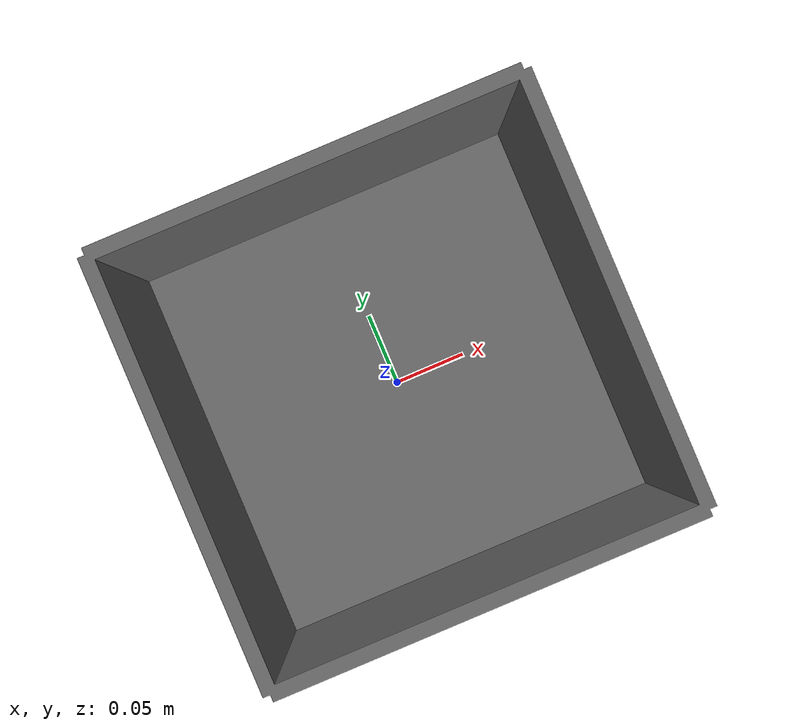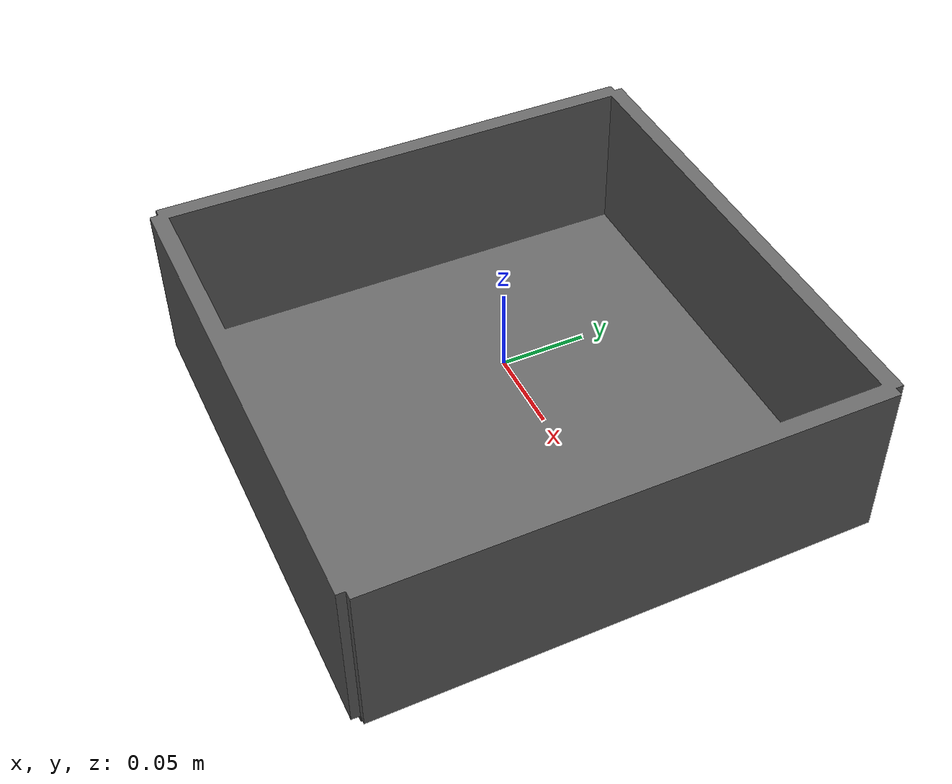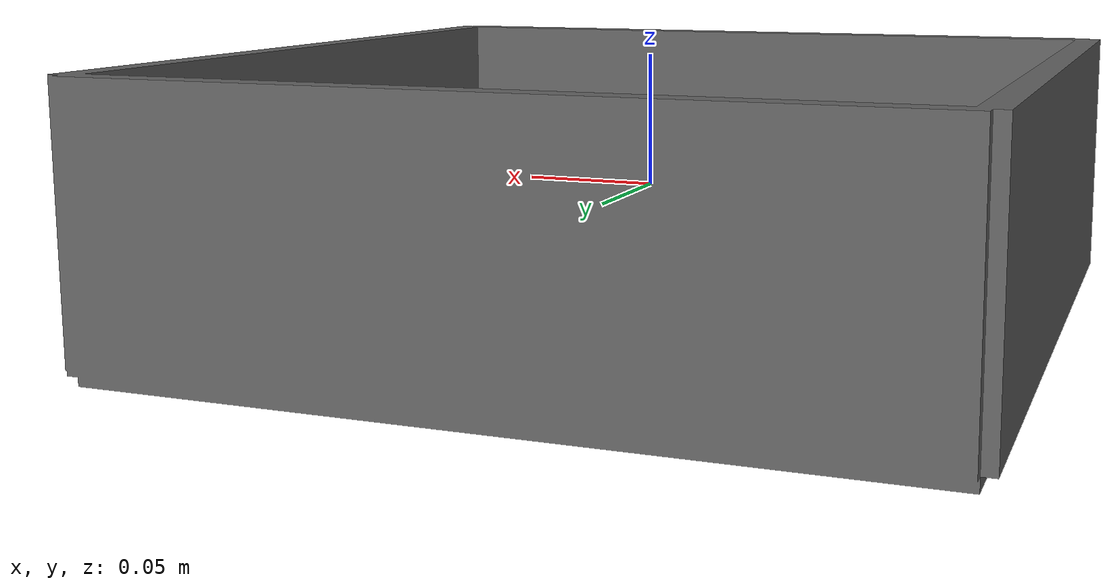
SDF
<?xml version="1.0" ?>
<sdf version="1.9">
  <model name="abdominal_cavity">
    <static>true</static>
    <link name="cavity_link">
      <collision name="cavity_collision">
        <geometry>
          <mesh>
            <uri>file://../../meshes/abdominal_cavity.stl</uri>
            <scale>1 1 1</scale>
          </mesh>
        </geometry>
      </collision>
      <visual name="cavity_visual">
        <geometry>
          <mesh>
            <uri>file://../../meshes/abdominal_cavity.stl</uri>
            <scale>1 1 1</scale>
          </mesh>
        </geometry>
        <material>
          <ambient>0.3 0.3 0.3 1</ambient>
          <diffuse>0.4 0.4 0.4 1</diffuse>
          <specular>0.1 0.1 0.1 1</specular>
        </material>
      </visual>
    </link>
  </model>
</sdf>
